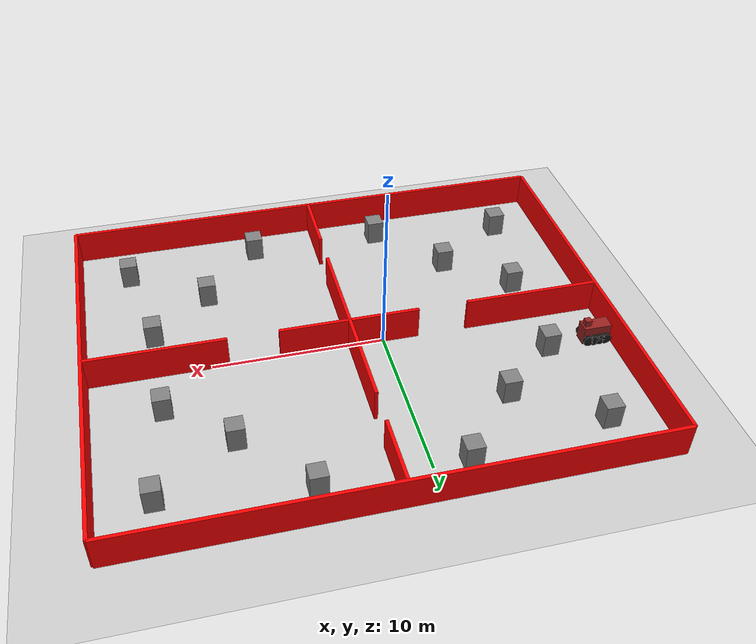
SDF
<?xml version="1.0" ?>
<sdf version="1.8">
    <world name="robotWorld">
        <physics name="1ms" type="ignored">
            <max_step_size>0.001</max_step_size>
            <real_time_factor>1.0</real_time_factor>
        </physics>
        <plugin
            filename="gz-sim-physics-system"
            name="gz::sim::systems::Physics">
        </plugin>
        <plugin
            filename="gz-sim-user-commands-system"
            name="gz::sim::systems::UserCommands">
        </plugin>
        <plugin
            filename="gz-sim-scene-broadcaster-system"
            name="gz::sim::systems::SceneBroadcaster">
        </plugin>
        <plugin
            filename="libignition-gazebo-sensors-system.so"
            name="ignition::gazebo::systems::Sensors">
            <render_engine>ogre2</render_engine>
        </plugin>

        <light type="directional" name="sun">
            <cast_shadows>true</cast_shadows>
            <pose>0 0 10 0 0 0</pose>
            <diffuse>0.8 0.8 0.8 1</diffuse>
            <specular>0.2 0.2 0.2 1</specular>
            <attenuation>
                <range>1000</range>
                <constant>0.9</constant>
                <linear>0.01</linear>
                <quadratic>0.001</quadratic>
            </attenuation>
            <direction>-0.5 0.1 -0.9</direction>
        </light>

        <model name="groundPlane">
            <static>true</static>
            <link name="link">
                <collision name="collision">
                <geometry>
                    <plane>
                    <normal>0 0 1</normal>
                    </plane>
                </geometry>
                </collision>
                <visual name="visual">
                <geometry>
                    <plane>
                    <normal>0 0 1</normal>
                    <size>100 100</size>
                    </plane>
                </geometry>
                <material>
                    <ambient>0.8 0.8 0.8 1</ambient>
                    <diffuse>0.8 0.8 0.8 1</diffuse>
                    <specular>0.8 0.8 0.8 1</specular>
                </material>
                </visual>
            </link>
        </model>

        <include>
            <uri>model://Flip</uri>
            <pose>-11 5 2.5 0 0 0</pose>
        </include>

        <include>
            <uri>model://Huis_met_meubels</uri>
            <pose>2 0 0 0 0 0</pose>
        </include>

    </world>
</sdf>

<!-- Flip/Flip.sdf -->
<sdf version="1.8">
        <model name='Flip' canonical_link='chassis'>
            <pose>0 0 0 0 0 0</pose>   <!--the pose is relative to the world by default-->

            <!--Toegevoegd voor het rijden.-->
            <plugin
                filename="gz-sim-diff-drive-system"
                name="gz::sim::systems::DiffDrive">

                <left_joint>firstLeftWheelJoint</left_joint>
                <left_joint>secondLeftWheelJoint</left_joint>
                <left_joint>thirdLeftWheelJoint</left_joint>
                <left_joint>fourthLeftWheelJoint</left_joint>

                <right_joint>firstRightWheelJoint</right_joint>
                <right_joint>secondRightWheelJoint</right_joint>
                <right_joint>thirdRightWheelJoint</right_joint>
                <right_joint>fourthRightWheelJoint</right_joint>

                <wheel_separation>1.7</wheel_separation>
                <wheel_radius>0.4</wheel_radius>
                <odom_publish_frequency>1</odom_publish_frequency>
                <topic>cmd_vel</topic>
            </plugin>

            <!--Chassis-->
            <link name='chassis'>
                <pose relative_to='__model__'>0.5 0 0.4 0 0 0</pose>
                <inertial> <!--inertial properties of the link mass, inertia matix-->
                    <mass>1.14395</mass>
                    <inertia>
                        <ixx>0.095329</ixx>
                        <ixy>0</ixy>
                        <ixz>0</ixz>
                        <iyy>0.381317</iyy>
                        <iyz>0</iyz>
                        <izz>0.476646</izz>
                    </inertia>
                </inertial>
                <visual name='visual'>
                    <geometry>
                        <box>
                            <size>1.55 0.75 1.05</size> <!--Length, width, height-->
                        </box>
                    </geometry>
                    <!--Color of the link-->
                    <material>
                        <ambient> 0.4 0.08 0.08 1.0</ambient>
                        <diffuse> 0.59 0.13 0.12 1.0</diffuse>
                        <specular>0.1 0.1 0.1 1.0</specular>
                    </material>
                </visual>
                <collision name='collision'>
                    <geometry>
                        <box>
                            <size>1.55 0.75 1.05</size>
                        </box>
                    </geometry>
                </collision>
            </link>

        <link name='front_block'>
        <pose relative_to='chassis'>0.50 0 0.70 0 0 0</pose>
        <inertial>
            <mass>0.3</mass>
            <inertia>
                <ixx>0.01</ixx>
                <ixy>0</ixy>
                <ixz>0</ixz>
                <iyy>0.01</iyy>
                <iyz>0</iyz>
                <izz>0.01</izz>
            </inertia>
        </inertial>

        <visual name='visual'>
            <geometry>
                <box>
                    <size>0.35 0.35 0.35</size>
                </box>
            </geometry>
            <material>
                <ambient> 0.4 0.08 0.08 1.0</ambient>
                <diffuse> 0.59 0.13 0.12 1.0</diffuse>
                <specular>0.1 0.1 0.1 1.0</specular>
            </material>
        </visual>

            <collision name='collision'>
                <geometry>
                    <box>
                        <size>0.5 0.5 0.5</size>
                    </box>
                </geometry>
            </collision>

    <sensor name='gpu_lidar' type='gpu_lidar'>
        <pose relative_to='lidar_frame'>0 0 0 0 0 0</pose>
        <topic>lidar</topic>
        <update_rate>10</update_rate>
                    <ray>
                        <scan>
                            <horizontal>
                                <samples>1000</samples>
                                <resolution>1</resolution>
                                <min_angle>-3.14159</min_angle>
                                <max_angle>3.14159</max_angle>
                            </horizontal>
                            <vertical>
                                <samples>1</samples>
                                <resolution>0.01</resolution>
                                <min_angle>0</min_angle>
                                <max_angle>0</max_angle>
                            </vertical>
                        </scan>
                        <range>
                            <min>0.08</min>
                            <max>10.0</max>
                            <resolution>0.01</resolution>
                        </range>
                    </ray>
                    <always_on>1</always_on>
                    <visualize>true</visualize>
                </sensor>

        <sensor name="camera" type="camera">
        <pose>0.175 0 -0.10 0 0 0</pose>
        <topic>camera</topic>
        <update_rate>30</update_rate>
        <camera>
            <!-- Veranderd van 1.047 (60 graden) naar 1.5708 (90 graden) -->
            <horizontal_fov>1.5708</horizontal_fov>
            <image>
                <width>640</width>
                <height>480</height>
                <format>R8G8B8</format>
            </image>
            <clip>
                <near>0.1</near>
                <far>100</far>
            </clip>
        </camera>
        <always_on>1</always_on>
        <visualize>true</visualize>
        </sensor>

            </link>

            <!-- Vast koppelen -->
            <joint name='front_block_fixed_joint' type='fixed'>
                <parent>chassis</parent>
                <child>front_block</child>
            </joint>

            <!--First left wheel-->
            <link name='firstLeftWheel'>
                <pose relative_to="chassis">0.5 0.45 -0.25 -1.5707 0 0</pose> <!--angles are in radian-->
                <inertial>
                    <mass>1</mass>
                    <inertia>
                        <ixx>0.043333</ixx>
                        <ixy>0</ixy>
                        <ixz>0</ixz>
                        <iyy>0.043333</iyy>
                        <iyz>0</iyz>
                        <izz>0.08</izz>
                    </inertia>
                </inertial>
                <visual name='visual'>
                    <geometry>
                        <cylinder>
                            <radius>0.3</radius>
                            <length>0.2</length>
                        </cylinder>
                    </geometry>
                    <material>
                        <ambient> 0.1 0.1 0.1 0.98</ambient>
                        <diffuse> 0.1 0.1 0.1 0.98</diffuse>
                        <specular>0.2 0.2 0.2 1.0</specular>
                    </material>
                </visual>
                <collision name='collision'>
                    <geometry>
                        <cylinder>
                            <radius>0.3</radius>
                            <length>0.2</length>
                        </cylinder>
                    </geometry>
                </collision>
            </link>

            <!--Left wheel-->
            <link name='secondLeftWheel'>
                <pose relative_to="chassis">0.15 0.45 -0.25 -1.5707 0 0</pose> <!--angles are in radian-->
                <inertial>
                    <mass>1</mass>
                    <inertia>
                        <ixx>0.043333</ixx>
                        <ixy>0</ixy>
                        <ixz>0</ixz>
                        <iyy>0.043333</iyy>
                        <iyz>0</iyz>
                        <izz>0.08</izz>
                    </inertia>
                </inertial>
                <visual name='visual'>
                    <geometry>
                        <cylinder>
                            <radius>0.3</radius>
                            <length>0.2</length>
                        </cylinder>
                    </geometry>
                    <material>
                        <ambient> 0.1 0.1 0.1 0.98</ambient>
                        <diffuse> 0.1 0.1 0.1 0.98</diffuse>
                        <specular>0.2 0.2 0.2 1.0</specular>
                    </material>
                </visual>
                <collision name='collision'>
                    <geometry>
                        <cylinder>
                            <radius>0.3</radius>
                            <length>0.2</length>
                        </cylinder>
                    </geometry>
                </collision>
            </link>

            <link name='thirdLeftWheel'>
                <pose relative_to="chassis">-0.15 0.45 -0.25 -1.5707 0 0</pose> <!--angles are in radian-->
                <inertial>
                    <mass>1</mass>
                    <inertia>
                        <ixx>0.043333</ixx>
                        <ixy>0</ixy>
                        <ixz>0</ixz>
                        <iyy>0.043333</iyy>
                        <iyz>0</iyz>
                        <izz>0.08</izz>
                    </inertia>
                </inertial>
                <visual name='visual'>
                    <geometry>
                        <cylinder>
                            <radius>0.3</radius>
                            <length>0.2</length>
                        </cylinder>
                    </geometry>
                    <material>
                        <ambient> 0.1 0.1 0.1 0.98</ambient>
                        <diffuse> 0.1 0.1 0.1 0.98</diffuse>
                        <specular>0.2 0.2 0.2 1.0</specular>
                    </material>
                </visual>
                <collision name='collision'>
                    <geometry>
                        <cylinder>
                            <radius>0.3</radius>
                            <length>0.2</length>
                        </cylinder>
                    </geometry>
                </collision>
            </link>

            <link name='fourthLeftWheel'>
                <pose relative_to="chassis">-0.5 0.45 -0.25 -1.5707 0 0</pose> <!--angles are in radian-->
                <inertial>
                    <mass>1</mass>
                    <inertia>
                        <ixx>0.043333</ixx>
                        <ixy>0</ixy>
                        <ixz>0</ixz>
                        <iyy>0.043333</iyy>
                        <iyz>0</iyz>
                        <izz>0.08</izz>
                    </inertia>
                </inertial>
                <visual name='visual'>
                    <geometry>
                        <cylinder>
                            <radius>0.3</radius>
                            <length>0.2</length>
                        </cylinder>
                    </geometry>
                    <material>
                        <ambient> 0.1 0.1 0.1 0.98</ambient>
                        <diffuse> 0.1 0.1 0.1 0.98</diffuse>
                        <specular>0.2 0.2 0.2 1.0</specular>
                    </material>
                </visual>
                <collision name='collision'>
                    <geometry>
                        <cylinder>
                            <radius>0.3</radius>
                            <length>0.2</length>
                        </cylinder>
                    </geometry>
                </collision>
            </link>

            <!--The same as left wheels but with different position-->
            <link name='firstRightWheel'>
                <pose relative_to="chassis">0.5 -0.45 -0.25 -1.5707 0 0</pose> <!--angles are in radian-->
                <inertial>
                    <mass>1</mass>
                    <inertia>
                        <ixx>0.043333</ixx>
                        <ixy>0</ixy>
                        <ixz>0</ixz>
                        <iyy>0.043333</iyy>
                        <iyz>0</iyz>
                        <izz>0.08</izz>
                    </inertia>
                </inertial>
                <visual name='visual'>
                    <geometry>
                        <cylinder>
                            <radius>0.3</radius>
                            <length>0.2</length>
                        </cylinder>
                    </geometry>
                    <material>
                        <ambient> 0.1 0.1 0.1 0.98</ambient>
                        <diffuse> 0.1 0.1 0.1 0.98</diffuse>
                        <specular>0.2 0.2 0.2 1.0</specular>
                    </material>
                </visual>
                <collision name='collision'>
                    <geometry>
                        <cylinder>
                            <radius>0.3</radius>
                            <length>0.2</length>
                        </cylinder>
                    </geometry>
                </collision>
            </link>

            <link name='secondRightWheel'>
                <pose relative_to="chassis">0.15 -0.45 -0.25 -1.5707 0 0</pose> <!--angles are in radian-->
                <inertial>
                    <mass>1</mass>
                    <inertia>
                        <ixx>0.043333</ixx>
                        <ixy>0</ixy>
                        <ixz>0</ixz>
                        <iyy>0.043333</iyy>
                        <iyz>0</iyz>
                        <izz>0.08</izz>
                    </inertia>
                </inertial>
                <visual name='visual'>
                    <geometry>
                        <cylinder>
                            <radius>0.3</radius>
                            <length>0.2</length>
                        </cylinder>
                    </geometry>
                    <material>
                        <ambient> 0.1 0.1 0.1 0.98</ambient>
                        <diffuse> 0.1 0.1 0.1 0.98</diffuse>
                        <specular>0.2 0.2 0.2 1.0</specular>
                    </material>
                </visual>
                <collision name='collision'>
                    <geometry>
                        <cylinder>
                            <radius>0.3</radius>
                            <length>0.2</length>
                        </cylinder>
                    </geometry>
                </collision>
            </link>

            <link name='thirdRightWheel'>
                <pose relative_to="chassis">-0.15 -0.45 -0.25 -1.5707 0 0</pose> <!--angles are in radian-->
                <inertial>
                    <mass>1</mass>
                    <inertia>
                        <ixx>0.043333</ixx>
                        <ixy>0</ixy>
                        <ixz>0</ixz>
                        <iyy>0.043333</iyy>
                        <iyz>0</iyz>
                        <izz>0.08</izz>
                    </inertia>
                </inertial>
                <visual name='visual'>
                    <geometry>
                        <cylinder>
                            <radius>0.3</radius>
                            <length>0.2</length>
                        </cylinder>
                    </geometry>
                    <material>
                        <ambient> 0.1 0.1 0.1 0.98</ambient>
                        <diffuse> 0.1 0.1 0.1 0.98</diffuse>
                        <specular>0.2 0.2 0.2 1.0</specular>
                    </material>
                </visual>
                <collision name='collision'>
                    <geometry>
                        <cylinder>
                            <radius>0.3</radius>
                            <length>0.2</length>
                        </cylinder>
                    </geometry>
                </collision>
            </link>

            <link name='fourthRightWheel'>
                <pose relative_to="chassis">-0.5 -0.45 -0.25 -1.5707 0 0</pose> <!--angles are in radian-->
                <inertial>
                    <mass>1</mass>
                    <inertia>
                        <ixx>0.043333</ixx>
                        <ixy>0</ixy>
                        <ixz>0</ixz>
                        <iyy>0.043333</iyy>
                        <iyz>0</iyz>
                        <izz>0.08</izz>
                    </inertia>
                </inertial>
                <visual name='visual'>
                    <geometry>
                        <cylinder>
                            <radius>0.3</radius>
                            <length>0.2</length>
                        </cylinder>
                    </geometry>
                    <material>
                        <ambient> 0.1 0.1 0.1 0.98</ambient>
                        <diffuse> 0.1 0.1 0.1 0.98</diffuse>
                        <specular>0.2 0.2 0.2 1.0</specular>
                    </material>
                </visual>
                <collision name='collision'>
                    <geometry>
                        <cylinder>
                            <radius>0.3</radius>
                            <length>0.2</length>
                        </cylinder>
                    </geometry>
                </collision>
            </link>

            <!--Left wheel joints-->
            <joint name='firstLeftWheelJoint' type='revolute'>
                <pose relative_to='firstLeftWheel'/>
                <parent>chassis</parent>
                <child>firstLeftWheel</child>
                <axis>
                    <xyz expressed_in='__model__'>0 1 0</xyz> <!--can be descired to any frame or even arbitrary frames-->
                    <limit>
                        <lower>-1.79769e+308</lower>    <!--negative infinity-->
                        <upper>1.79769e+308</upper>     <!--positive infinity-->
                    </limit>
                </axis>
            </joint>

            <joint name='secondLeftWheelJoint' type='revolute'>
                <pose relative_to='secondLeftWheel'/>
                <parent>chassis</parent>
                <child>secondLeftWheel</child>
                <axis>
                    <xyz expressed_in='__model__'>0 1 0</xyz> <!--can be descired to any frame or even arbitrary frames-->
                    <limit>
                        <lower>-1.79769e+308</lower>
                        <upper>1.79769e+308</upper>
                    </limit>
                </axis>
            </joint>

            <joint name='thirdLeftWheelJoint' type='revolute'>
                <pose relative_to='thirdLeftWheel'/>
                <parent>chassis</parent>
                <child>thirdLeftWheel</child>
                <axis>
                    <xyz expressed_in='__model__'>0 1 0</xyz> <!--can be descired to any frame or even arbitrary frames-->
                    <limit>
                        <lower>-1.79769e+308</lower>
                        <upper>1.79769e+308</upper>
                    </limit>
                </axis>
            </joint>

            <joint name='fourthLeftWheelJoint' type='revolute'>
                <pose relative_to='fourthLeftWheel'/>
                <parent>chassis</parent>
                <child>fourthLeftWheel</child>
                <axis>
                    <xyz expressed_in='__model__'>0 1 0</xyz> <!--can be descired to any frame or even arbitrary frames-->
                    <limit>
                        <lower>-1.79769e+308</lower>
                        <upper>1.79769e+308</upper>
                    </limit>
                </axis>
            </joint>

            <!--Right wheel joints-->
            <joint name='firstRightWheelJoint' type='revolute'>
                <pose relative_to='firstRightWheel'/>
                <parent>chassis</parent>
                <child>firstRightWheel</child>
                <axis>
                    <xyz expressed_in='__model__'>0 1 0</xyz>
                    <limit>
                        <lower>-1.79769e+308</lower>    <!--negative infinity-->
                        <upper>1.79769e+308</upper>     <!--positive infinity-->
                    </limit>
                </axis>
            </joint>

            <joint name='secondRightWheelJoint' type='revolute'>
                <pose relative_to='secondRightWheel'/>
                <parent>chassis</parent>
                <child>secondRightWheel</child>
                <axis>
                    <xyz expressed_in='__model__'>0 1 0</xyz>
                    <limit>
                        <lower>-1.79769e+308</lower>
                        <upper>1.79769e+308</upper>
                    </limit>
                </axis>
            </joint>

            <joint name='thirdRightWheelJoint' type='revolute'>
                <pose relative_to='thirdRightWheel'/>
                <parent>chassis</parent>
                <child>thirdRightWheel</child>
                <axis>
                    <xyz expressed_in='__model__'>0 1 0</xyz>
                    <limit>
                        <lower>-1.79769e+308</lower>
                        <upper>1.79769e+308</upper>
                    </limit>
                </axis>
            </joint>

            <joint name='fourthRightWheelJoint' type='revolute'>
                <pose relative_to='fourthRightWheel'/>
                <parent>chassis</parent>
                <child>fourthRightWheel</child>
                <axis>
                    <xyz expressed_in='__model__'>0 1 0</xyz>
                    <limit>
                        <lower>-1.79769e+308</lower>
                        <upper>1.79769e+308</upper>
                    </limit>
                </axis>
            </joint>

        </model>
</sdf>

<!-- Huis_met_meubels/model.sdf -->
<sdf version="1.7">
  <model name="Huis_met_meubels">
    <static>true</static>

    <model name="wall_north">
      <pose>0 12 1 0 0 0</pose>
      <link name="link">
        <collision name="collision"><geometry><box><size>30 0.2 2</size></box></geometry></collision>
        <visual name="visual">
          <geometry><box><size>30 0.2 2</size></box></geometry>
          <material>
            <ambient>1 0 0 1</ambient>
            <diffuse>1 0 0 1</diffuse>
          </material>
        </visual>
      </link>
    </model>

    <model name="wall_south">
      <pose>0 -12 1 0 0 0</pose>
      <link name="link">
        <collision name="collision"><geometry><box><size>30 0.2 2</size></box></geometry></collision>
        <visual name="visual">
          <geometry><box><size>30 0.2 2</size></box></geometry>
          <material>
            <ambient>1 0 0 1</ambient>
            <diffuse>1 0 0 1</diffuse>
          </material>
        </visual>
      </link>
    </model>

    <model name="wall_east">
      <pose>15 0 1 0 0 0</pose>
      <link name="link">
        <collision name="collision"><geometry><box><size>0.2 24 2</size></box></geometry></collision>
        <visual name="visual">
          <geometry><box><size>0.2 24 2</size></box></geometry>
          <material>
            <ambient>1 0 0 1</ambient>
            <diffuse>1 0 0 1</diffuse>
          </material>
        </visual>
      </link>
    </model>

    <model name="wall_west">
      <pose>-15 0 1 0 0 0</pose>
      <link name="link">
        <collision name="collision"><geometry><box><size>0.2 24 2</size></box></geometry></collision>
        <visual name="visual">
          <geometry><box><size>0.2 24 2</size></box></geometry>
          <material>
            <ambient>1 0 0 1</ambient>
            <diffuse>1 0 0 1</diffuse>
          </material>
        </visual>
      </link>
    </model>

    <model name="mid_wall_left_outer">
      <pose>-11 0 1 0 0 0</pose>
      <link name="link">
        <collision name="c"><geometry><box><size>8 0.2 2</size></box></geometry></collision>
        <visual name="v"><geometry><box><size>8 0.2 2</size></box></geometry>
        <material>
            <ambient>1 0 0 1</ambient>
            <diffuse>1 0 0 1</diffuse>
          </material></visual>
      </link>
    </model>

    <model name="mid_wall_left_inner">
      <pose>-2.1 0 1 0 0 0</pose>
      <link name="link">
        <collision name="c"><geometry><box><size>4 0.2 2</size></box></geometry></collision>
        <visual name="v"><geometry><box><size>4 0.2 2</size></box></geometry>
        <material>
            <ambient>1 0 0 1</ambient>
            <diffuse>1 0 0 1</diffuse>
          </material></visual>
      </link>
    </model>

    <model name="mid_wall_right_inner">
      <pose>2.1 0 1 0 0 0</pose>
      <link name="link">
        <collision name="c"><geometry><box><size>4 0.2 2</size></box></geometry></collision>
        <visual name="v"><geometry><box><size>4 0.2 2</size></box></geometry>
        <material>
            <ambient>1 0 0 1</ambient>
            <diffuse>1 0 0 1</diffuse>
          </material></visual>
      </link>
    </model>

    <model name="mid_wall_right_outer">
      <pose>11 0 1 0 0 0</pose>
      <link name="link">
        <collision name="c"><geometry><box><size>8 0.2 2</size></box></geometry></collision>
        <visual name="v"><geometry><box><size>8 0.2 2</size></box></geometry>
        <material>
            <ambient>1 0 0 1</ambient>
            <diffuse>1 0 0 1</diffuse>
          </material></visual>
      </link>
    </model>

    <model name="mid_vertical_top"><pose>0 10 1 0 0 0</pose>
      <link name="link"><collision name="collision"><geometry><box><size>0.2 4 2</size></box></geometry></collision>
      <visual name="visual"><geometry><box><size>0.2 4 2</size></box></geometry>
      <material>
            <ambient>1 0 0 1</ambient>
            <diffuse>1 0 0 1</diffuse>
          </material></visual></link>
    </model>

   <model name="mid_vertical_upper">
      <pose>0 3 1 0 0 0</pose> <link name="link">
        <collision name="collision">
          <geometry><box><size>0.2 6 2</size></box></geometry> </collision>
        <visual name="visual">
          <geometry><box><size>0.2 6 2</size></box></geometry>
          <material>
            <ambient>1 0 0 1</ambient>
            <diffuse>1 0 0 1</diffuse>
          </material>
        </visual>
      </link>
    </model>

    <model name="mid_vertical_lower">
      <pose>0 -3 1 0 0 0</pose> <link name="link">
        <collision name="collision">
          <geometry><box><size>0.2 6 2</size></box></geometry> </collision>
        <visual name="visual">
          <geometry><box><size>0.2 6 2</size></box></geometry>
          <material>
            <ambient>1 0 0 1</ambient>
            <diffuse>1 0 0 1</diffuse>
          </material>
        </visual>
      </link>
    </model>

    <model name="mid_vertical_bottom"><pose>0 -10 1 0 0 0</pose>
      <link name="link"><collision name="collision"><geometry><box><size>0.2 4 2</size></box></geometry></collision>
      <visual name="visual"><geometry><box><size>0.2 4 2</size></box></geometry>
      <material>
            <ambient>1 0 0 1</ambient>
            <diffuse>1 0 0 1</diffuse>
          </material></visual></link>
    </model>

    <model name="nw_1"><pose>-12 9 0.75 0 0 0</pose><link name="link"><collision name="c"><geometry><box><size>1 1 1.5</size></box></geometry></collision><visual name="v"><geometry><box><size>1 1 1.5</size></box></geometry><material><ambient>0.5 0.5 0.5 1</ambient><diffuse>0.5 0.5 0.5 1</diffuse></material></visual></link></model>
    <model name="nw_2"><pose>-4 10 0.75 0 0 0</pose><link name="link"><collision name="c"><geometry><box><size>1 1 1.5</size></box></geometry></collision><visual name="v"><geometry><box><size>1 1 1.5</size></box></geometry><material><ambient>0.5 0.5 0.5 1</ambient><diffuse>0.5 0.5 0.5 1</diffuse></material></visual></link></model>
    <model name="nw_3"><pose>-11 3 0.75 0 0 0</pose><link name="link"><collision name="c"><geometry><box><size>1 1 1.5</size></box></geometry></collision><visual name="v"><geometry><box><size>1 1 1.5</size></box></geometry><material><ambient>0.5 0.5 0.5 1</ambient><diffuse>0.5 0.5 0.5 1</diffuse></material></visual></link></model>
    <model name="nw_4"><pose>-7.5 6 0.75 0 0 0</pose> <link name="link"><collision name="c"><geometry><box><size>1 1 1.5</size></box></geometry></collision><visual name="v"><geometry><box><size>1 1 1.5</size></box></geometry><material><ambient>0.5 0.5 0.5 1</ambient><diffuse>0.5 0.5 0.5 1</diffuse></material></visual></link></model>

    <model name="ne_1"><pose>12 9 0.75 0 0 0</pose><link name="link"><collision name="c"><geometry><box><size>1 1 1.5</size></box></geometry></collision><visual name="v"><geometry><box><size>1 1 1.5</size></box></geometry><material><ambient>0.5 0.5 0.5 1</ambient><diffuse>0.5 0.5 0.5 1</diffuse></material></visual></link></model>
    <model name="ne_2"><pose>4 10 0.75 0 0 0</pose><link name="link"><collision name="c"><geometry><box><size>1 1 1.5</size></box></geometry></collision><visual name="v"><geometry><box><size>1 1 1.5</size></box></geometry><material><ambient>0.5 0.5 0.5 1</ambient><diffuse>0.5 0.5 0.5 1</diffuse></material></visual></link></model>
    <model name="ne_3"><pose>11 3 0.75 0 0 0</pose><link name="link"><collision name="c"><geometry><box><size>1 1 1.5</size></box></geometry></collision><visual name="v"><geometry><box><size>1 1 1.5</size></box></geometry><material><ambient>0.5 0.5 0.5 1</ambient><diffuse>0.5 0.5 0.5 1</diffuse></material></visual></link></model>
    <model name="ne_4"><pose>7.5 6 0.75 0 0 0</pose> <link name="link"><collision name="c"><geometry><box><size>1 1 1.5</size></box></geometry></collision><visual name="v"><geometry><box><size>1 1 1.5</size></box></geometry><material><ambient>0.5 0.5 0.5 1</ambient><diffuse>0.5 0.5 0.5 1</diffuse></material></visual></link></model>

    <model name="sw_1"><pose>-12 -9 0.75 0 0 0</pose><link name="link"><collision name="c"><geometry><box><size>1 1 1.5</size></box></geometry></collision><visual name="v"><geometry><box><size>1 1 1.5</size></box></geometry><material><ambient>0.5 0.5 0.5 1</ambient><diffuse>0.5 0.5 0.5 1</diffuse></material></visual></link></model>
    <model name="sw_2"><pose>-4 -10 0.75 0 0 0</pose><link name="link"><collision name="c"><geometry><box><size>1 1 1.5</size></box></geometry></collision><visual name="v"><geometry><box><size>1 1 1.5</size></box></geometry><material><ambient>0.5 0.5 0.5 1</ambient><diffuse>0.5 0.5 0.5 1</diffuse></material></visual></link></model>
    <model name="sw_3"><pose>-11 -3 0.75 0 0 0</pose><link name="link"><collision name="c"><geometry><box><size>1 1 1.5</size></box></geometry></collision><visual name="v"><geometry><box><size>1 1 1.5</size></box></geometry><material><ambient>0.5 0.5 0.5 1</ambient><diffuse>0.5 0.5 0.5 1</diffuse></material></visual></link></model>
    <model name="sw_4"><pose>-7.5 -6 0.75 0 0 0</pose> <link name="link"><collision name="c"><geometry><box><size>1 1 1.5</size></box></geometry></collision><visual name="v"><geometry><box><size>1 1 1.5</size></box></geometry><material><ambient>0.5 0.5 0.5 1</ambient><diffuse>0.5 0.5 0.5 1</diffuse></material></visual></link></model>

    <model name="se_1"><pose>12 -9 0.75 0 0 0</pose><link name="link"><collision name="c"><geometry><box><size>1 1 1.5</size></box></geometry></collision><visual name="v"><geometry><box><size>1 1 1.5</size></box></geometry><material><ambient>0.5 0.5 0.5 1</ambient><diffuse>0.5 0.5 0.5 1</diffuse></material></visual></link></model>
    <model name="se_2"><pose>4 -10 0.75 0 0 0</pose><link name="link"><collision name="c"><geometry><box><size>1 1 1.5</size></box></geometry></collision><visual name="v"><geometry><box><size>1 1 1.5</size></box></geometry><material><ambient>0.5 0.5 0.5 1</ambient><diffuse>0.5 0.5 0.5 1</diffuse></material></visual></link></model>
    <model name="se_3"><pose>11 -3 0.75 0 0 0</pose><link name="link"><collision name="c"><geometry><box><size>1 1 1.5</size></box></geometry></collision><visual name="v"><geometry><box><size>1 1 1.5</size></box></geometry><material><ambient>0.5 0.5 0.5 1</ambient><diffuse>0.5 0.5 0.5 1</diffuse></material></visual></link></model>
    <model name="se_4"><pose>7.5 -6 0.75 0 0 0</pose> <link name="link"><collision name="c"><geometry><box><size>1 1 1.5</size></box></geometry></collision><visual name="v"><geometry><box><size>1 1 1.5</size></box></geometry><material><ambient>0.5 0.5 0.5 1</ambient><diffuse>0.5 0.5 0.5 1</diffuse></material></visual></link></model>

  </model>
</sdf>
